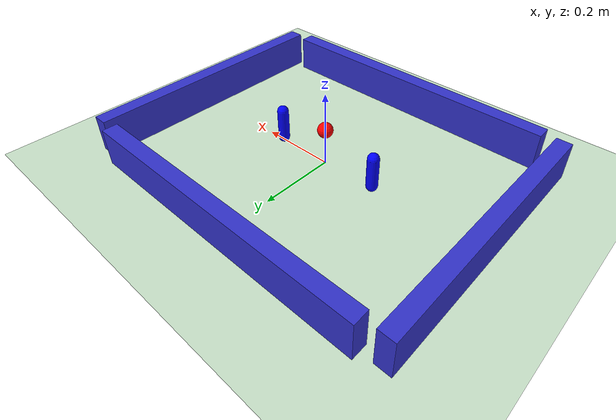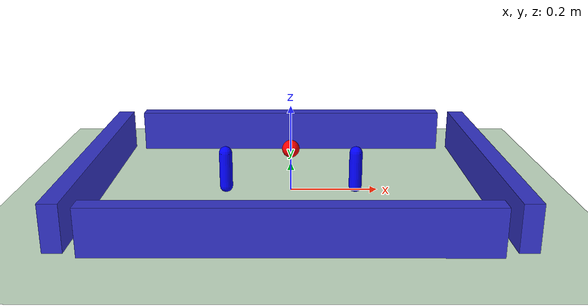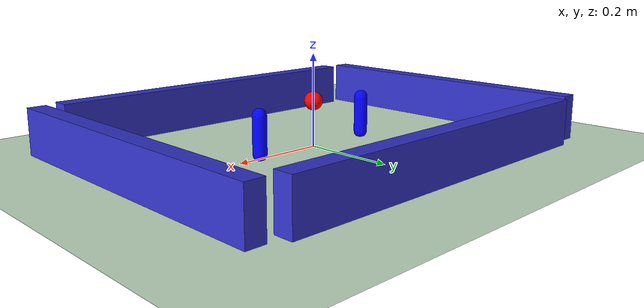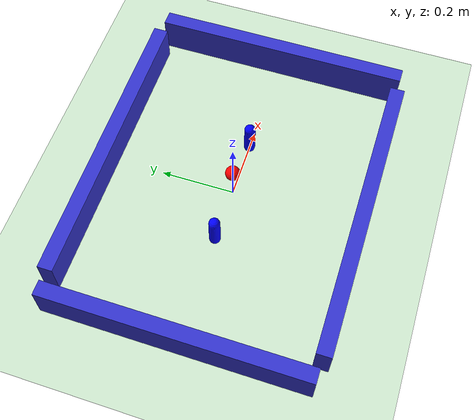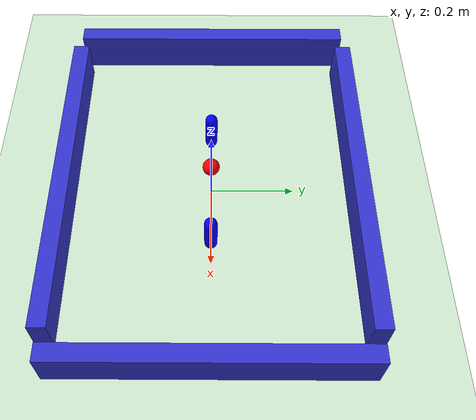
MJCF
<mujoco model="multirod_foosball">
  <option timestep="0.002" gravity="0 0 -9.81"/>

  <worldbody>
    <!-- Ground plane -->
    <body name="ground" pos="0 0 0">
      <geom name="ground" type="plane"
            size="2 2 0.1"
            contype="1" conaffinity="1"
            rgba="0.8 0.9 0.8 1"/>
    </body>

    <!-- Ball -->
    <body name="ball_body" pos="0 0 0.10">
      <joint name="ball_free" type="free"/>
      <geom name="ball" type="sphere" size="0.02"
            density="1000"
            contype="1" conaffinity="1"
            rgba="1 0 0 1"/>
    </body>

    <!-- Simple field walls -->
    <body name="wall_top" pos="0 0.35 0.05">
      <geom name="wall_top_geom" type="box"
            size="0.40 0.02 0.05"
            contype="1" conaffinity="1"
            rgba="0.2 0.2 0.8 1"/>
    </body>
    <body name="wall_bottom" pos="0 -0.35 0.05">
      <geom name="wall_bottom_geom" type="box"
            size="0.40 0.02 0.05"
            contype="1" conaffinity="1"
            rgba="0.2 0.2 0.8 1"/>
    </body>
    <body name="wall_left" pos="-0.45 0 0.05">
      <geom name="wall_left_geom" type="box"
            size="0.02 0.35 0.05"
            contype="1" conaffinity="1"
            rgba="0.2 0.2 0.8 1"/>
    </body>
    <body name="wall_right" pos="0.45 0 0.05">
      <geom name="wall_right_geom" type="box"
            size="0.02 0.35 0.05"
            contype="1" conaffinity="1"
            rgba="0.2 0.2 0.8 1"/>
    </body>

    <!-- ROD 1 (e.g. “defender”) at x = -0.15 -->
    <body name="rod_1" pos="-0.15 0 0">
      <joint name="rod_1_slide" type="slide" axis="0 1 0" range="-0.30 0.30"/>
      <body name="player_1" pos="0 0 0">
        <geom name="player_1_geom" type="capsule"
              fromto="0 0 0.01  0 0 0.09"
              size="0.015"
              density="500"
              contype="1" conaffinity="1"
              rgba="0 0 1 1"/>
      </body>
    </body>

    <!-- ROD 2 (e.g. “attacker”) at x = +0.15 -->
    <body name="rod_2" pos="0.15 0 0">
      <joint name="rod_2_slide" type="slide" axis="0 1 0" range="-0.30 0.30"/>
      <body name="player_2" pos="0 0 0">
        <geom name="player_2_geom" type="capsule"
              fromto="0 0 0.01  0 0 0.09"
              size="0.015"
              density="500"
              contype="1" conaffinity="1"
              rgba="0 0 1 1"/>
      </body>
    </body>
  </worldbody>

  <actuator>
    <motor name="rod_1_motor" joint="rod_1_slide" gear="1"/>
    <motor name="rod_2_motor" joint="rod_2_slide" gear="1"/>
  </actuator>
</mujoco>
